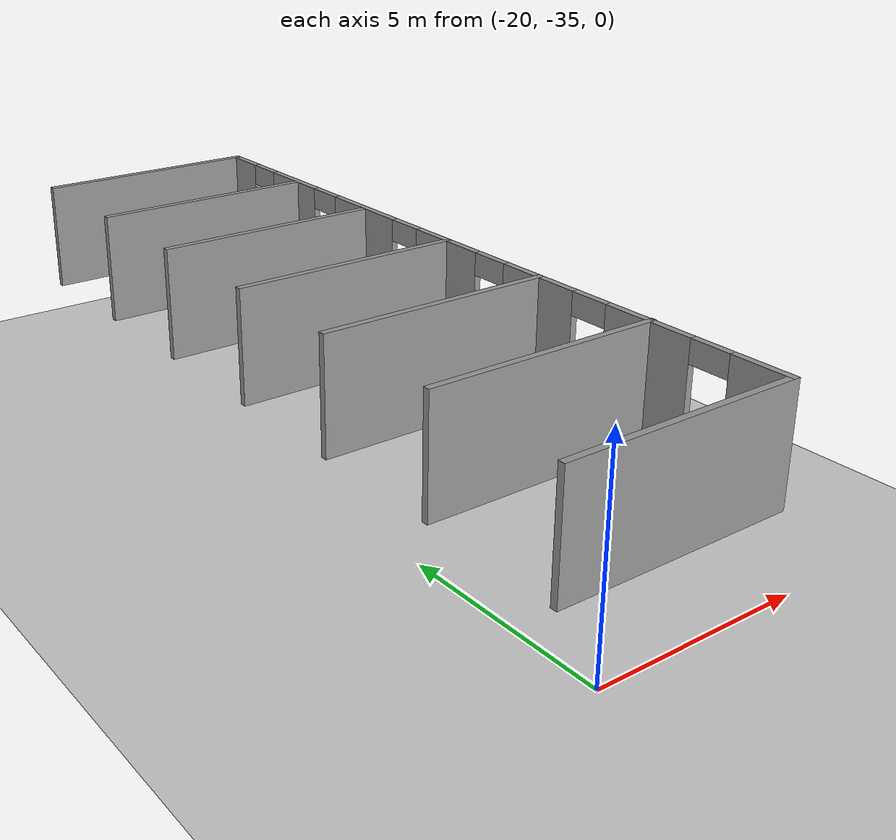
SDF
<sdf version="1.6">
 <world name="default">
  <model name="ground_plane">
   <static>1</static>
   <link name="link">
    <collision name="collision">
     <geometry><plane><normal>0 0 1</normal><size>100 100</size></plane></geometry>
     <surface>
      <contact><collide_bitmask>65535</collide_bitmask></contact>
      <friction><ode><mu>100</mu><mu2>50</mu2></ode></friction>
     </surface>
    </collision>
    <visual name="visual">
     <cast_shadows>0</cast_shadows>
     <geometry><plane><normal>0 0 1</normal><size>100 100</size></plane></geometry>
     <material>
      <script><uri>file://media/materials/scripts/gazebo.material</uri><name>Gazebo/Grey</name></script>
     </material>
    </visual>
   </link>
  </model>
  <model name="6_cubicles">
   <link name="Wall_18">
    <pose>2.54311 0 0 0 0 -1.5708</pose>
    <visual name="Wall_18_Visual_0">
     <pose>-8.56856 0 1.25 0 -0 0</pose>
     <geometry><box><size>1.11288 0.15 2.5</size></box></geometry>
     <material>
      <script><uri>file://media/materials/scripts/gazebo.material</uri><name>Gazebo/Grey</name></script>
      <ambient>1 1 1 1</ambient>
      <shader type="pixel"/>
     </material>
     <meta><layer>0</layer></meta>
    </visual>
    <visual name="Wall_18_Visual_1">
     <pose>-6.16963 0 1.25 0 -0 0</pose>
     <geometry><box><size>1.885 0.15 2.5</size></box></geometry>
     <material>
      <script><uri>file://media/materials/scripts/gazebo.material</uri><name>Gazebo/Grey</name></script>
      <ambient>1 1 1 1</ambient>
      <shader type="pixel"/>
     </material>
     <meta><layer>0</layer></meta>
    </visual>
    <visual name="Wall_18_Visual_8">
     <pose>-4.77713 0 2.25 0 -0 0</pose>
     <geometry><box><size>0.9 0.15 0.5</size></box></geometry>
     <material>
      <script><uri>file://media/materials/scripts/gazebo.material</uri><name>Gazebo/Grey</name></script>
      <ambient>1 1 1 1</ambient>
      <shader type="pixel"/>
     </material>
     <meta><layer>0</layer></meta>
    </visual>
    <visual name="Wall_18_Visual_7">
     <pose>-7.56212 0 2.25 0 -0 0</pose>
     <geometry><box><size>0.9 0.15 0.5</size></box></geometry>
     <material>
      <script><uri>file://media/materials/scripts/gazebo.material</uri><name>Gazebo/Grey</name></script>
      <ambient>1 1 1 1</ambient>
      <shader type="pixel"/>
     </material>
     <meta><layer>0</layer></meta>
    </visual>
    <visual name="Wall_18_Visual_10">
     <pose>1.36512 0 2.25 0 -0 0</pose>
     <geometry><box><size>0.9 0.15 0.5</size></box></geometry>
     <material>
      <script><uri>file://media/materials/scripts/gazebo.material</uri><name>Gazebo/Grey</name></script>
      <ambient>1 1 1 1</ambient>
      <shader type="pixel"/>
     </material>
     <meta><layer>0</layer></meta>
    </visual>
    <visual name="Wall_18_Visual_12">
     <pose>7.31662 0 2.25 0 -0 0</pose>
     <geometry><box><size>0.9 0.15 0.5</size></box></geometry>
     <material>
      <script><uri>file://media/materials/scripts/gazebo.material</uri><name>Gazebo/Grey</name></script>
      <ambient>1 1 1 1</ambient>
      <shader type="pixel"/>
     </material>
     <meta><layer>0</layer></meta>
    </visual>
    <visual name="Wall_18_Visual_3">
     <pose>-0.103676 0 1.25 0 -0 0</pose>
     <geometry><box><size>2.0376 0.15 2.5</size></box></geometry>
     <material>
      <script><uri>file://media/materials/scripts/gazebo.material</uri><name>Gazebo/Grey</name></script>
      <ambient>1 1 1 1</ambient>
      <shader type="pixel"/>
     </material>
     <meta><layer>0</layer></meta>
    </visual>
    <visual name="Wall_18_Visual_9">
     <pose>-1.57248 0 2.25 0 -0 0</pose>
     <geometry><box><size>0.9 0.15 0.5</size></box></geometry>
     <material>
      <script><uri>file://media/materials/scripts/gazebo.material</uri><name>Gazebo/Grey</name></script>
      <ambient>1 1 1 1</ambient>
      <shader type="pixel"/>
     </material>
     <meta><layer>0</layer></meta>
    </visual>
    <visual name="Wall_18_Visual_5">
     <pose>5.80967 0 1.25 0 -0 0</pose>
     <geometry><box><size>2.1139 0.15 2.5</size></box></geometry>
     <material>
      <script><uri>file://media/materials/scripts/gazebo.material</uri><name>Gazebo/Grey</name></script>
      <ambient>1 1 1 1</ambient>
      <shader type="pixel"/>
     </material>
     <meta><layer>0</layer></meta>
    </visual>
    <visual name="Wall_18_Visual_11">
     <pose>4.30272 0 2.25 0 -0 0</pose>
     <geometry><box><size>0.9 0.15 0.5</size></box></geometry>
     <material>
      <script><uri>file://media/materials/scripts/gazebo.material</uri><name>Gazebo/Grey</name></script>
      <ambient>1 1 1 1</ambient>
      <shader type="pixel"/>
     </material>
     <meta><layer>0</layer></meta>
    </visual>
    <visual name="Wall_18_Visual_6">
     <pose>8.44581 0 1.25 0 -0 0</pose>
     <geometry><box><size>1.35838 0.15 2.5</size></box></geometry>
     <material>
      <script><uri>file://media/materials/scripts/gazebo.material</uri><name>Gazebo/Grey</name></script>
      <ambient>1 1 1 1</ambient>
      <shader type="pixel"/>
     </material>
     <meta><layer>0</layer></meta>
    </visual>
    <visual name="Wall_18_Visual_4">
     <pose>2.83392 0 1.25 0 -0 0</pose>
     <geometry><box><size>2.0376 0.15 2.5</size></box></geometry>
     <material>
      <script><uri>file://media/materials/scripts/gazebo.material</uri><name>Gazebo/Grey</name></script>
      <ambient>1 1 1 1</ambient>
      <shader type="pixel"/>
     </material>
     <meta><layer>0</layer></meta>
    </visual>
    <visual name="Wall_18_Visual_2">
     <pose>-3.1748 0 1.25 0 -0 0</pose>
     <geometry><box><size>2.30465 0.15 2.5</size></box></geometry>
     <material>
      <script><uri>file://media/materials/scripts/gazebo.material</uri><name>Gazebo/Grey</name></script>
      <ambient>1 1 1 1</ambient>
      <shader type="pixel"/>
     </material>
     <meta><layer>0</layer></meta>
    </visual>
    <collision name="Wall_18_Collision_7">
     <pose>-7.56212 0 2.25 0 -0 0</pose>
     <geometry><box><size>0.9 0.15 0.5</size></box></geometry>
     <surface>
      <friction>
       <ode><mu>1</mu><mu2>1</mu2><fdir1>0 0 0</fdir1><slip1>0</slip1><slip2>0</slip2></ode>
       <torsional>
        <coefficient>1</coefficient>
        <patch_radius>0</patch_radius>
        <surface_radius>0</surface_radius>
        <use_patch_radius>1</use_patch_radius>
        <ode><slip>0</slip></ode>
       </torsional>
      </friction>
      <bounce><restitution_coefficient>0</restitution_coefficient><threshold>1e+06</threshold></bounce>
      <contact>
       <collide_without_contact>0</collide_without_contact>
       <collide_without_contact_bitmask>1</collide_without_contact_bitmask>
       <collide_bitmask>1</collide_bitmask>
       <ode>
        <soft_cfm>0</soft_cfm>
        <soft_erp>0.2</soft_erp>
        <kp>1e+13</kp>
        <kd>1</kd>
        <max_vel>0.01</max_vel>
        <min_depth>0</min_depth>
       </ode>
       <bullet>
        <split_impulse>1</split_impulse>
        <split_impulse_penetration_threshold>-0.01</split_impulse_penetration_threshold>
        <soft_cfm>0</soft_cfm>
        <soft_erp>0.2</soft_erp>
        <kp>1e+13</kp>
        <kd>1</kd>
       </bullet>
      </contact>
     </surface>
    </collision>
    <collision name="Wall_18_Collision_3">
     <pose>-0.103676 0 1.25 0 -0 0</pose>
     <geometry><box><size>2.0376 0.15 2.5</size></box></geometry>
     <surface>
      <friction>
       <ode><mu>1</mu><mu2>1</mu2><fdir1>0 0 0</fdir1><slip1>0</slip1><slip2>0</slip2></ode>
       <torsional>
        <coefficient>1</coefficient>
        <patch_radius>0</patch_radius>
        <surface_radius>0</surface_radius>
        <use_patch_radius>1</use_patch_radius>
        <ode><slip>0</slip></ode>
       </torsional>
      </friction>
      <bounce><restitution_coefficient>0</restitution_coefficient><threshold>1e+06</threshold></bounce>
      <contact>
       <collide_without_contact>0</collide_without_contact>
       <collide_without_contact_bitmask>1</collide_without_contact_bitmask>
       <collide_bitmask>1</collide_bitmask>
       <ode>
        <soft_cfm>0</soft_cfm>
        <soft_erp>0.2</soft_erp>
        <kp>1e+13</kp>
        <kd>1</kd>
        <max_vel>0.01</max_vel>
        <min_depth>0</min_depth>
       </ode>
       <bullet>
        <split_impulse>1</split_impulse>
        <split_impulse_penetration_threshold>-0.01</split_impulse_penetration_threshold>
        <soft_cfm>0</soft_cfm>
        <soft_erp>0.2</soft_erp>
        <kp>1e+13</kp>
        <kd>1</kd>
       </bullet>
      </contact>
     </surface>
    </collision>
    <collision name="Wall_18_Collision_0">
     <pose>-8.56856 0 1.25 0 -0 0</pose>
     <geometry><box><size>1.11288 0.15 2.5</size></box></geometry>
     <surface>
      <friction>
       <ode><mu>1</mu><mu2>1</mu2><fdir1>0 0 0</fdir1><slip1>0</slip1><slip2>0</slip2></ode>
       <torsional>
        <coefficient>1</coefficient>
        <patch_radius>0</patch_radius>
        <surface_radius>0</surface_radius>
        <use_patch_radius>1</use_patch_radius>
        <ode><slip>0</slip></ode>
       </torsional>
      </friction>
      <bounce><restitution_coefficient>0</restitution_coefficient><threshold>1e+06</threshold></bounce>
      <contact>
       <collide_without_contact>0</collide_without_contact>
       <collide_without_contact_bitmask>1</collide_without_contact_bitmask>
       <collide_bitmask>1</collide_bitmask>
       <ode>
        <soft_cfm>0</soft_cfm>
        <soft_erp>0.2</soft_erp>
        <kp>1e+13</kp>
        <kd>1</kd>
        <max_vel>0.01</max_vel>
        <min_depth>0</min_depth>
       </ode>
       <bullet>
        <split_impulse>1</split_impulse>
        <split_impulse_penetration_threshold>-0.01</split_impulse_penetration_threshold>
        <soft_cfm>0</soft_cfm>
        <soft_erp>0.2</soft_erp>
        <kp>1e+13</kp>
        <kd>1</kd>
       </bullet>
      </contact>
     </surface>
    </collision>
    <collision name="Wall_18_Collision_5">
     <pose>5.80967 0 1.25 0 -0 0</pose>
     <geometry><box><size>2.1139 0.15 2.5</size></box></geometry>
     <surface>
      <friction>
       <ode><mu>1</mu><mu2>1</mu2><fdir1>0 0 0</fdir1><slip1>0</slip1><slip2>0</slip2></ode>
       <torsional>
        <coefficient>1</coefficient>
        <patch_radius>0</patch_radius>
        <surface_radius>0</surface_radius>
        <use_patch_radius>1</use_patch_radius>
        <ode><slip>0</slip></ode>
       </torsional>
      </friction>
      <bounce><restitution_coefficient>0</restitution_coefficient><threshold>1e+06</threshold></bounce>
      <contact>
       <collide_without_contact>0</collide_without_contact>
       <collide_without_contact_bitmask>1</collide_without_contact_bitmask>
       <collide_bitmask>1</collide_bitmask>
       <ode>
        <soft_cfm>0</soft_cfm>
        <soft_erp>0.2</soft_erp>
        <kp>1e+13</kp>
        <kd>1</kd>
        <max_vel>0.01</max_vel>
        <min_depth>0</min_depth>
       </ode>
       <bullet>
        <split_impulse>1</split_impulse>
        <split_impulse_penetration_threshold>-0.01</split_impulse_penetration_threshold>
        <soft_cfm>0</soft_cfm>
        <soft_erp>0.2</soft_erp>
        <kp>1e+13</kp>
        <kd>1</kd>
       </bullet>
      </contact>
     </surface>
    </collision>
    <collision name="Wall_18_Collision_8">
     <pose>-4.77713 0 2.25 0 -0 0</pose>
     <geometry><box><size>0.9 0.15 0.5</size></box></geometry>
     <surface>
      <friction>
       <ode><mu>1</mu><mu2>1</mu2><fdir1>0 0 0</fdir1><slip1>0</slip1><slip2>0</slip2></ode>
       <torsional>
        <coefficient>1</coefficient>
        <patch_radius>0</patch_radius>
        <surface_radius>0</surface_radius>
        <use_patch_radius>1</use_patch_radius>
        <ode><slip>0</slip></ode>
       </torsional>
      </friction>
      <bounce><restitution_coefficient>0</restitution_coefficient><threshold>1e+06</threshold></bounce>
      <contact>
       <collide_without_contact>0</collide_without_contact>
       <collide_without_contact_bitmask>1</collide_without_contact_bitmask>
       <collide_bitmask>1</collide_bitmask>
       <ode>
        <soft_cfm>0</soft_cfm>
        <soft_erp>0.2</soft_erp>
        <kp>1e+13</kp>
        <kd>1</kd>
        <max_vel>0.01</max_vel>
        <min_depth>0</min_depth>
       </ode>
       <bullet>
        <split_impulse>1</split_impulse>
        <split_impulse_penetration_threshold>-0.01</split_impulse_penetration_threshold>
        <soft_cfm>0</soft_cfm>
        <soft_erp>0.2</soft_erp>
        <kp>1e+13</kp>
        <kd>1</kd>
       </bullet>
      </contact>
     </surface>
    </collision>
    <collision name="Wall_18_Collision_1">
     <pose>-6.16963 0 1.25 0 -0 0</pose>
     <geometry><box><size>1.885 0.15 2.5</size></box></geometry>
     <surface>
      <friction>
       <ode><mu>1</mu><mu2>1</mu2><fdir1>0 0 0</fdir1><slip1>0</slip1><slip2>0</slip2></ode>
       <torsional>
        <coefficient>1</coefficient>
        <patch_radius>0</patch_radius>
        <surface_radius>0</surface_radius>
        <use_patch_radius>1</use_patch_radius>
        <ode><slip>0</slip></ode>
       </torsional>
      </friction>
      <bounce><restitution_coefficient>0</restitution_coefficient><threshold>1e+06</threshold></bounce>
      <contact>
       <collide_without_contact>0</collide_without_contact>
       <collide_without_contact_bitmask>1</collide_without_contact_bitmask>
       <collide_bitmask>1</collide_bitmask>
       <ode>
        <soft_cfm>0</soft_cfm>
        <soft_erp>0.2</soft_erp>
        <kp>1e+13</kp>
        <kd>1</kd>
        <max_vel>0.01</max_vel>
        <min_depth>0</min_depth>
       </ode>
       <bullet>
        <split_impulse>1</split_impulse>
        <split_impulse_penetration_threshold>-0.01</split_impulse_penetration_threshold>
        <soft_cfm>0</soft_cfm>
        <soft_erp>0.2</soft_erp>
        <kp>1e+13</kp>
        <kd>1</kd>
       </bullet>
      </contact>
     </surface>
    </collision>
    <collision name="Wall_18_Collision_6">
     <pose>8.44581 0 1.25 0 -0 0</pose>
     <geometry><box><size>1.35838 0.15 2.5</size></box></geometry>
     <surface>
      <friction>
       <ode><mu>1</mu><mu2>1</mu2><fdir1>0 0 0</fdir1><slip1>0</slip1><slip2>0</slip2></ode>
       <torsional>
        <coefficient>1</coefficient>
        <patch_radius>0</patch_radius>
        <surface_radius>0</surface_radius>
        <use_patch_radius>1</use_patch_radius>
        <ode><slip>0</slip></ode>
       </torsional>
      </friction>
      <bounce><restitution_coefficient>0</restitution_coefficient><threshold>1e+06</threshold></bounce>
      <contact>
       <collide_without_contact>0</collide_without_contact>
       <collide_without_contact_bitmask>1</collide_without_contact_bitmask>
       <collide_bitmask>1</collide_bitmask>
       <ode>
        <soft_cfm>0</soft_cfm>
        <soft_erp>0.2</soft_erp>
        <kp>1e+13</kp>
        <kd>1</kd>
        <max_vel>0.01</max_vel>
        <min_depth>0</min_depth>
       </ode>
       <bullet>
        <split_impulse>1</split_impulse>
        <split_impulse_penetration_threshold>-0.01</split_impulse_penetration_threshold>
        <soft_cfm>0</soft_cfm>
        <soft_erp>0.2</soft_erp>
        <kp>1e+13</kp>
        <kd>1</kd>
       </bullet>
      </contact>
     </surface>
    </collision>
    <collision name="Wall_18_Collision_9">
     <pose>-1.57248 0 2.25 0 -0 0</pose>
     <geometry><box><size>0.9 0.15 0.5</size></box></geometry>
     <surface>
      <friction>
       <ode><mu>1</mu><mu2>1</mu2><fdir1>0 0 0</fdir1><slip1>0</slip1><slip2>0</slip2></ode>
       <torsional>
        <coefficient>1</coefficient>
        <patch_radius>0</patch_radius>
        <surface_radius>0</surface_radius>
        <use_patch_radius>1</use_patch_radius>
        <ode><slip>0</slip></ode>
       </torsional>
      </friction>
      <bounce><restitution_coefficient>0</restitution_coefficient><threshold>1e+06</threshold></bounce>
      <contact>
       <collide_without_contact>0</collide_without_contact>
       <collide_without_contact_bitmask>1</collide_without_contact_bitmask>
       <collide_bitmask>1</collide_bitmask>
       <ode>
        <soft_cfm>0</soft_cfm>
        <soft_erp>0.2</soft_erp>
        <kp>1e+13</kp>
        <kd>1</kd>
        <max_vel>0.01</max_vel>
        <min_depth>0</min_depth>
       </ode>
       <bullet>
        <split_impulse>1</split_impulse>
        <split_impulse_penetration_threshold>-0.01</split_impulse_penetration_threshold>
        <soft_cfm>0</soft_cfm>
        <soft_erp>0.2</soft_erp>
        <kp>1e+13</kp>
        <kd>1</kd>
       </bullet>
      </contact>
     </surface>
    </collision>
    <collision name="Wall_18_Collision_10">
     <pose>1.36512 0 2.25 0 -0 0</pose>
     <geometry><box><size>0.9 0.15 0.5</size></box></geometry>
     <surface>
      <friction>
       <ode><mu>1</mu><mu2>1</mu2><fdir1>0 0 0</fdir1><slip1>0</slip1><slip2>0</slip2></ode>
       <torsional>
        <coefficient>1</coefficient>
        <patch_radius>0</patch_radius>
        <surface_radius>0</surface_radius>
        <use_patch_radius>1</use_patch_radius>
        <ode><slip>0</slip></ode>
       </torsional>
      </friction>
      <bounce><restitution_coefficient>0</restitution_coefficient><threshold>1e+06</threshold></bounce>
      <contact>
       <collide_without_contact>0</collide_without_contact>
       <collide_without_contact_bitmask>1</collide_without_contact_bitmask>
       <collide_bitmask>1</collide_bitmask>
       <ode>
        <soft_cfm>0</soft_cfm>
        <soft_erp>0.2</soft_erp>
        <kp>1e+13</kp>
        <kd>1</kd>
        <max_vel>0.01</max_vel>
        <min_depth>0</min_depth>
       </ode>
       <bullet>
        <split_impulse>1</split_impulse>
        <split_impulse_penetration_threshold>-0.01</split_impulse_penetration_threshold>
        <soft_cfm>0</soft_cfm>
        <soft_erp>0.2</soft_erp>
        <kp>1e+13</kp>
        <kd>1</kd>
       </bullet>
      </contact>
     </surface>
    </collision>
    <collision name="Wall_18_Collision_12">
     <pose>7.31662 0 2.25 0 -0 0</pose>
     <geometry><box><size>0.9 0.15 0.5</size></box></geometry>
     <surface>
      <friction>
       <ode><mu>1</mu><mu2>1</mu2><fdir1>0 0 0</fdir1><slip1>0</slip1><slip2>0</slip2></ode>
       <torsional>
        <coefficient>1</coefficient>
        <patch_radius>0</patch_radius>
        <surface_radius>0</surface_radius>
        <use_patch_radius>1</use_patch_radius>
        <ode><slip>0</slip></ode>
       </torsional>
      </friction>
      <bounce><restitution_coefficient>0</restitution_coefficient><threshold>1e+06</threshold></bounce>
      <contact>
       <collide_without_contact>0</collide_without_contact>
       <collide_without_contact_bitmask>1</collide_without_contact_bitmask>
       <collide_bitmask>1</collide_bitmask>
       <ode>
        <soft_cfm>0</soft_cfm>
        <soft_erp>0.2</soft_erp>
        <kp>1e+13</kp>
        <kd>1</kd>
        <max_vel>0.01</max_vel>
        <min_depth>0</min_depth>
       </ode>
       <bullet>
        <split_impulse>1</split_impulse>
        <split_impulse_penetration_threshold>-0.01</split_impulse_penetration_threshold>
        <soft_cfm>0</soft_cfm>
        <soft_erp>0.2</soft_erp>
        <kp>1e+13</kp>
        <kd>1</kd>
       </bullet>
      </contact>
     </surface>
    </collision>
    <collision name="Wall_18_Collision_11">
     <pose>4.30272 0 2.25 0 -0 0</pose>
     <geometry><box><size>0.9 0.15 0.5</size></box></geometry>
     <surface>
      <friction>
       <ode><mu>1</mu><mu2>1</mu2><fdir1>0 0 0</fdir1><slip1>0</slip1><slip2>0</slip2></ode>
       <torsional>
        <coefficient>1</coefficient>
        <patch_radius>0</patch_radius>
        <surface_radius>0</surface_radius>
        <use_patch_radius>1</use_patch_radius>
        <ode><slip>0</slip></ode>
       </torsional>
      </friction>
      <bounce><restitution_coefficient>0</restitution_coefficient><threshold>1e+06</threshold></bounce>
      <contact>
       <collide_without_contact>0</collide_without_contact>
       <collide_without_contact_bitmask>1</collide_without_contact_bitmask>
       <collide_bitmask>1</collide_bitmask>
       <ode>
        <soft_cfm>0</soft_cfm>
        <soft_erp>0.2</soft_erp>
        <kp>1e+13</kp>
        <kd>1</kd>
        <max_vel>0.01</max_vel>
        <min_depth>0</min_depth>
       </ode>
       <bullet>
        <split_impulse>1</split_impulse>
        <split_impulse_penetration_threshold>-0.01</split_impulse_penetration_threshold>
        <soft_cfm>0</soft_cfm>
        <soft_erp>0.2</soft_erp>
        <kp>1e+13</kp>
        <kd>1</kd>
       </bullet>
      </contact>
     </surface>
    </collision>
    <collision name="Wall_18_Collision_4">
     <pose>2.83392 0 1.25 0 -0 0</pose>
     <geometry><box><size>2.0376 0.15 2.5</size></box></geometry>
     <surface>
      <friction>
       <ode><mu>1</mu><mu2>1</mu2><fdir1>0 0 0</fdir1><slip1>0</slip1><slip2>0</slip2></ode>
       <torsional>
        <coefficient>1</coefficient>
        <patch_radius>0</patch_radius>
        <surface_radius>0</surface_radius>
        <use_patch_radius>1</use_patch_radius>
        <ode><slip>0</slip></ode>
       </torsional>
      </friction>
      <bounce><restitution_coefficient>0</restitution_coefficient><threshold>1e+06</threshold></bounce>
      <contact>
       <collide_without_contact>0</collide_without_contact>
       <collide_without_contact_bitmask>1</collide_without_contact_bitmask>
       <collide_bitmask>1</collide_bitmask>
       <ode>
        <soft_cfm>0</soft_cfm>
        <soft_erp>0.2</soft_erp>
        <kp>1e+13</kp>
        <kd>1</kd>
        <max_vel>0.01</max_vel>
        <min_depth>0</min_depth>
       </ode>
       <bullet>
        <split_impulse>1</split_impulse>
        <split_impulse_penetration_threshold>-0.01</split_impulse_penetration_threshold>
        <soft_cfm>0</soft_cfm>
        <soft_erp>0.2</soft_erp>
        <kp>1e+13</kp>
        <kd>1</kd>
       </bullet>
      </contact>
     </surface>
    </collision>
    <collision name="Wall_18_Collision_2">
     <pose>-3.1748 0 1.25 0 -0 0</pose>
     <geometry><box><size>2.30465 0.15 2.5</size></box></geometry>
     <surface>
      <friction>
       <ode><mu>1</mu><mu2>1</mu2><fdir1>0 0 0</fdir1><slip1>0</slip1><slip2>0</slip2></ode>
       <torsional>
        <coefficient>1</coefficient>
        <patch_radius>0</patch_radius>
        <surface_radius>0</surface_radius>
        <use_patch_radius>1</use_patch_radius>
        <ode><slip>0</slip></ode>
       </torsional>
      </friction>
      <bounce><restitution_coefficient>0</restitution_coefficient><threshold>1e+06</threshold></bounce>
      <contact>
       <collide_without_contact>0</collide_without_contact>
       <collide_without_contact_bitmask>1</collide_without_contact_bitmask>
       <collide_bitmask>1</collide_bitmask>
       <ode>
        <soft_cfm>0</soft_cfm>
        <soft_erp>0.2</soft_erp>
        <kp>1e+13</kp>
        <kd>1</kd>
        <max_vel>0.01</max_vel>
        <min_depth>0</min_depth>
       </ode>
       <bullet>
        <split_impulse>1</split_impulse>
        <split_impulse_penetration_threshold>-0.01</split_impulse_penetration_threshold>
        <soft_cfm>0</soft_cfm>
        <soft_erp>0.2</soft_erp>
        <kp>1e+13</kp>
        <kd>1</kd>
       </bullet>
      </contact>
     </surface>
    </collision>
   </link>
   <link name="Wall_19">
    <pose>-0.006891 -9.05 0 0 -0 3.14159</pose>
    <visual name="Wall_19_Visual">
     <pose>0 0 1.25 0 -0 0</pose>
     <geometry><box><size>5.25 0.15 2.5</size></box></geometry>
     <material>
      <script><uri>file://media/materials/scripts/gazebo.material</uri><name>Gazebo/Grey</name></script>
      <ambient>1 1 1 1</ambient>
      <shader type="pixel"/>
     </material>
     <meta><layer>0</layer></meta>
    </visual>
    <collision name="Wall_19_Collision">
     <pose>0 0 1.25 0 -0 0</pose>
     <geometry><box><size>5.25 0.15 2.5</size></box></geometry>
     <surface>
      <friction>
       <ode><mu>1</mu><mu2>1</mu2><fdir1>0 0 0</fdir1><slip1>0</slip1><slip2>0</slip2></ode>
       <torsional>
        <coefficient>1</coefficient>
        <patch_radius>0</patch_radius>
        <surface_radius>0</surface_radius>
        <use_patch_radius>1</use_patch_radius>
        <ode><slip>0</slip></ode>
       </torsional>
      </friction>
      <bounce><restitution_coefficient>0</restitution_coefficient><threshold>1e+06</threshold></bounce>
      <contact>
       <collide_without_contact>0</collide_without_contact>
       <collide_without_contact_bitmask>1</collide_without_contact_bitmask>
       <collide_bitmask>1</collide_bitmask>
       <ode>
        <soft_cfm>0</soft_cfm>
        <soft_erp>0.2</soft_erp>
        <kp>1e+13</kp>
        <kd>1</kd>
        <max_vel>0.01</max_vel>
        <min_depth>0</min_depth>
       </ode>
       <bullet>
        <split_impulse>1</split_impulse>
        <split_impulse_penetration_threshold>-0.01</split_impulse_penetration_threshold>
        <soft_cfm>0</soft_cfm>
        <soft_erp>0.2</soft_erp>
        <kp>1e+13</kp>
        <kd>1</kd>
       </bullet>
      </contact>
     </surface>
    </collision>
   </link>
   <link name="Wall_21">
    <pose>-0.019075 6.0361 0 0 -0 0</pose>
    <visual name="Wall_21_Visual">
     <pose>0 0 1.25 0 -0 0</pose>
     <geometry><box><size>5.25 0.15 2.5</size></box></geometry>
     <material>
      <script><uri>file://media/materials/scripts/gazebo.material</uri><name>Gazebo/Grey</name></script>
      <ambient>1 1 1 1</ambient>
      <shader type="pixel"/>
     </material>
     <meta><layer>0</layer></meta>
    </visual>
    <collision name="Wall_21_Collision">
     <pose>0 0 1.25 0 -0 0</pose>
     <geometry><box><size>5.25 0.15 2.5</size></box></geometry>
     <surface>
      <friction>
       <ode><mu>1</mu><mu2>1</mu2><fdir1>0 0 0</fdir1><slip1>0</slip1><slip2>0</slip2></ode>
       <torsional>
        <coefficient>1</coefficient>
        <patch_radius>0</patch_radius>
        <surface_radius>0</surface_radius>
        <use_patch_radius>1</use_patch_radius>
        <ode><slip>0</slip></ode>
       </torsional>
      </friction>
      <bounce><restitution_coefficient>0</restitution_coefficient><threshold>1e+06</threshold></bounce>
      <contact>
       <collide_without_contact>0</collide_without_contact>
       <collide_without_contact_bitmask>1</collide_without_contact_bitmask>
       <collide_bitmask>1</collide_bitmask>
       <ode>
        <soft_cfm>0</soft_cfm>
        <soft_erp>0.2</soft_erp>
        <kp>1e+13</kp>
        <kd>1</kd>
        <max_vel>0.01</max_vel>
        <min_depth>0</min_depth>
       </ode>
       <bullet>
        <split_impulse>1</split_impulse>
        <split_impulse_penetration_threshold>-0.01</split_impulse_penetration_threshold>
        <soft_cfm>0</soft_cfm>
        <soft_erp>0.2</soft_erp>
        <kp>1e+13</kp>
        <kd>1</kd>
       </bullet>
      </contact>
     </surface>
    </collision>
   </link>
   <link name="Wall_21_clone">
    <pose>-0.017763 9.05155 0 0 -0 0</pose>
    <visual name="Wall_21_Visual">
     <pose>0 0 1.25 0 -0 0</pose>
     <geometry><box><size>5.25 0.15 2.5</size></box></geometry>
     <material>
      <script><uri>file://media/materials/scripts/gazebo.material</uri><name>Gazebo/Grey</name></script>
      <ambient>1 1 1 1</ambient>
      <shader type="pixel"/>
     </material>
     <meta><layer>0</layer></meta>
    </visual>
    <collision name="Wall_21_Collision">
     <pose>0 0 1.25 0 -0 0</pose>
     <geometry><box><size>5.25 0.15 2.5</size></box></geometry>
     <surface>
      <friction>
       <ode><mu>1</mu><mu2>1</mu2><fdir1>0 0 0</fdir1><slip1>0</slip1><slip2>0</slip2></ode>
       <torsional>
        <coefficient>1</coefficient>
        <patch_radius>0</patch_radius>
        <surface_radius>0</surface_radius>
        <use_patch_radius>1</use_patch_radius>
        <ode><slip>0</slip></ode>
       </torsional>
      </friction>
      <bounce><restitution_coefficient>0</restitution_coefficient><threshold>1e+06</threshold></bounce>
      <contact>
       <collide_without_contact>0</collide_without_contact>
       <collide_without_contact_bitmask>1</collide_without_contact_bitmask>
       <collide_bitmask>1</collide_bitmask>
       <ode>
        <soft_cfm>0</soft_cfm>
        <soft_erp>0.2</soft_erp>
        <kp>1e+13</kp>
        <kd>1</kd>
        <max_vel>0.01</max_vel>
        <min_depth>0</min_depth>
       </ode>
       <bullet>
        <split_impulse>1</split_impulse>
        <split_impulse_penetration_threshold>-0.01</split_impulse_penetration_threshold>
        <soft_cfm>0</soft_cfm>
        <soft_erp>0.2</soft_erp>
        <kp>1e+13</kp>
        <kd>1</kd>
       </bullet>
      </contact>
     </surface>
    </collision>
   </link>
   <link name="Wall_23">
    <pose>-0.019075 3.13665 0 0 -0 0</pose>
    <visual name="Wall_23_Visual">
     <pose>0 0 1.25 0 -0 0</pose>
     <geometry><box><size>5.25 0.15 2.5</size></box></geometry>
     <material>
      <script><uri>file://media/materials/scripts/gazebo.material</uri><name>Gazebo/Grey</name></script>
      <ambient>1 1 1 1</ambient>
      <shader type="pixel"/>
     </material>
     <meta><layer>0</layer></meta>
    </visual>
    <collision name="Wall_23_Collision">
     <pose>0 0 1.25 0 -0 0</pose>
     <geometry><box><size>5.25 0.15 2.5</size></box></geometry>
     <surface>
      <friction>
       <ode><mu>1</mu><mu2>1</mu2><fdir1>0 0 0</fdir1><slip1>0</slip1><slip2>0</slip2></ode>
       <torsional>
        <coefficient>1</coefficient>
        <patch_radius>0</patch_radius>
        <surface_radius>0</surface_radius>
        <use_patch_radius>1</use_patch_radius>
        <ode><slip>0</slip></ode>
       </torsional>
      </friction>
      <bounce><restitution_coefficient>0</restitution_coefficient><threshold>1e+06</threshold></bounce>
      <contact>
       <collide_without_contact>0</collide_without_contact>
       <collide_without_contact_bitmask>1</collide_without_contact_bitmask>
       <collide_bitmask>1</collide_bitmask>
       <ode>
        <soft_cfm>0</soft_cfm>
        <soft_erp>0.2</soft_erp>
        <kp>1e+13</kp>
        <kd>1</kd>
        <max_vel>0.01</max_vel>
        <min_depth>0</min_depth>
       </ode>
       <bullet>
        <split_impulse>1</split_impulse>
        <split_impulse_penetration_threshold>-0.01</split_impulse_penetration_threshold>
        <soft_cfm>0</soft_cfm>
        <soft_erp>0.2</soft_erp>
        <kp>1e+13</kp>
        <kd>1</kd>
       </bullet>
      </contact>
     </surface>
    </collision>
   </link>
   <link name="Wall_25">
    <pose>-0.019075 0.122751 0 0 -0 0</pose>
    <visual name="Wall_25_Visual">
     <pose>0 0 1.25 0 -0 0</pose>
     <geometry><box><size>5.25 0.15 2.5</size></box></geometry>
     <material>
      <script><uri>file://media/materials/scripts/gazebo.material</uri><name>Gazebo/Grey</name></script>
      <ambient>1 1 1 1</ambient>
      <shader type="pixel"/>
     </material>
     <meta><layer>0</layer></meta>
    </visual>
    <collision name="Wall_25_Collision">
     <pose>0 0 1.25 0 -0 0</pose>
     <geometry><box><size>5.25 0.15 2.5</size></box></geometry>
     <surface>
      <friction>
       <ode><mu>1</mu><mu2>1</mu2><fdir1>0 0 0</fdir1><slip1>0</slip1><slip2>0</slip2></ode>
       <torsional>
        <coefficient>1</coefficient>
        <patch_radius>0</patch_radius>
        <surface_radius>0</surface_radius>
        <use_patch_radius>1</use_patch_radius>
        <ode><slip>0</slip></ode>
       </torsional>
      </friction>
      <bounce><restitution_coefficient>0</restitution_coefficient><threshold>1e+06</threshold></bounce>
      <contact>
       <collide_without_contact>0</collide_without_contact>
       <collide_without_contact_bitmask>1</collide_without_contact_bitmask>
       <collide_bitmask>1</collide_bitmask>
       <ode>
        <soft_cfm>0</soft_cfm>
        <soft_erp>0.2</soft_erp>
        <kp>1e+13</kp>
        <kd>1</kd>
        <max_vel>0.01</max_vel>
        <min_depth>0</min_depth>
       </ode>
       <bullet>
        <split_impulse>1</split_impulse>
        <split_impulse_penetration_threshold>-0.01</split_impulse_penetration_threshold>
        <soft_cfm>0</soft_cfm>
        <soft_erp>0.2</soft_erp>
        <kp>1e+13</kp>
        <kd>1</kd>
       </bullet>
      </contact>
     </surface>
    </collision>
   </link>
   <link name="Wall_27">
    <pose>-0.019075 -2.81485 0 0 -0 0</pose>
    <visual name="Wall_27_Visual">
     <pose>0 0 1.25 0 -0 0</pose>
     <geometry><box><size>5.25 0.15 2.5</size></box></geometry>
     <material>
      <script><uri>file://media/materials/scripts/gazebo.material</uri><name>Gazebo/Grey</name></script>
      <ambient>1 1 1 1</ambient>
      <shader type="pixel"/>
     </material>
     <meta><layer>0</layer></meta>
    </visual>
    <collision name="Wall_27_Collision">
     <pose>0 0 1.25 0 -0 0</pose>
     <geometry><box><size>5.25 0.15 2.5</size></box></geometry>
     <surface>
      <friction>
       <ode><mu>1</mu><mu2>1</mu2><fdir1>0 0 0</fdir1><slip1>0</slip1><slip2>0</slip2></ode>
       <torsional>
        <coefficient>1</coefficient>
        <patch_radius>0</patch_radius>
        <surface_radius>0</surface_radius>
        <use_patch_radius>1</use_patch_radius>
        <ode><slip>0</slip></ode>
       </torsional>
      </friction>
      <bounce><restitution_coefficient>0</restitution_coefficient><threshold>1e+06</threshold></bounce>
      <contact>
       <collide_without_contact>0</collide_without_contact>
       <collide_without_contact_bitmask>1</collide_without_contact_bitmask>
       <collide_bitmask>1</collide_bitmask>
       <ode>
        <soft_cfm>0</soft_cfm>
        <soft_erp>0.2</soft_erp>
        <kp>1e+13</kp>
        <kd>1</kd>
        <max_vel>0.01</max_vel>
        <min_depth>0</min_depth>
       </ode>
       <bullet>
        <split_impulse>1</split_impulse>
        <split_impulse_penetration_threshold>-0.01</split_impulse_penetration_threshold>
        <soft_cfm>0</soft_cfm>
        <soft_erp>0.2</soft_erp>
        <kp>1e+13</kp>
        <kd>1</kd>
       </bullet>
      </contact>
     </surface>
    </collision>
   </link>
   <link name="Wall_29">
    <pose>0.019075 -5.82875 0 0 -0 0</pose>
    <visual name="Wall_29_Visual">
     <pose>0 0 1.25 0 -0 0</pose>
     <geometry><box><size>5.25 0.15 2.5</size></box></geometry>
     <material>
      <script><uri>file://media/materials/scripts/gazebo.material</uri><name>Gazebo/Grey</name></script>
      <ambient>1 1 1 1</ambient>
      <shader type="pixel"/>
     </material>
     <meta><layer>0</layer></meta>
    </visual>
    <collision name="Wall_29_Collision">
     <pose>0 0 1.25 0 -0 0</pose>
     <geometry><box><size>5.25 0.15 2.5</size></box></geometry>
     <surface>
      <friction>
       <ode><mu>1</mu><mu2>1</mu2><fdir1>0 0 0</fdir1><slip1>0</slip1><slip2>0</slip2></ode>
       <torsional>
        <coefficient>1</coefficient>
        <patch_radius>0</patch_radius>
        <surface_radius>0</surface_radius>
        <use_patch_radius>1</use_patch_radius>
        <ode><slip>0</slip></ode>
       </torsional>
      </friction>
      <bounce><restitution_coefficient>0</restitution_coefficient><threshold>1e+06</threshold></bounce>
      <contact>
       <collide_without_contact>0</collide_without_contact>
       <collide_without_contact_bitmask>1</collide_without_contact_bitmask>
       <collide_bitmask>1</collide_bitmask>
       <ode>
        <soft_cfm>0</soft_cfm>
        <soft_erp>0.2</soft_erp>
        <kp>1e+13</kp>
        <kd>1</kd>
        <max_vel>0.01</max_vel>
        <min_depth>0</min_depth>
       </ode>
       <bullet>
        <split_impulse>1</split_impulse>
        <split_impulse_penetration_threshold>-0.01</split_impulse_penetration_threshold>
        <soft_cfm>0</soft_cfm>
        <soft_erp>0.2</soft_erp>
        <kp>1e+13</kp>
        <kd>1</kd>
       </bullet>
      </contact>
     </surface>
    </collision>
   </link>
   <static>1</static>
   <pose>-19.2194 -26.6895 2.70522 0 -0 0</pose>
  </model>
 </world>
</sdf>
